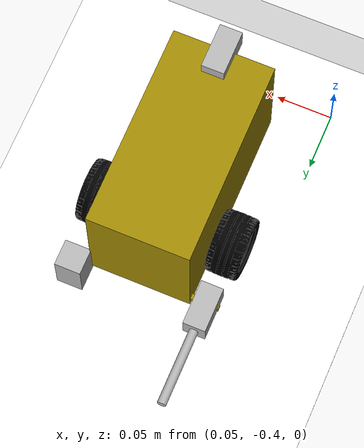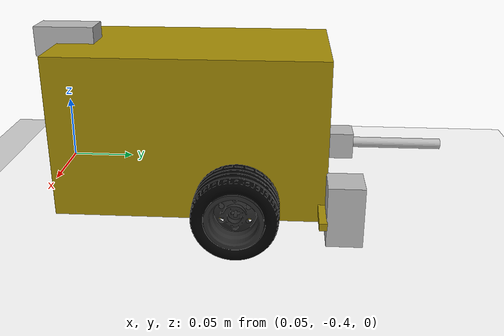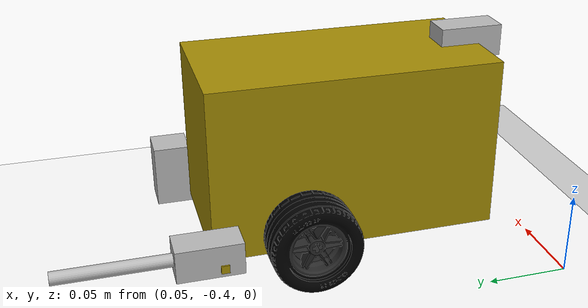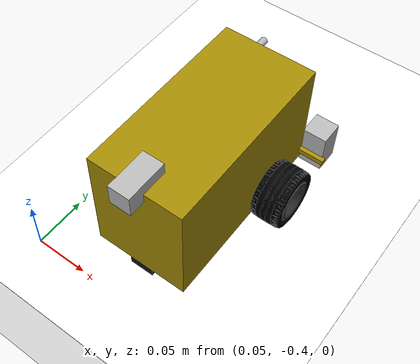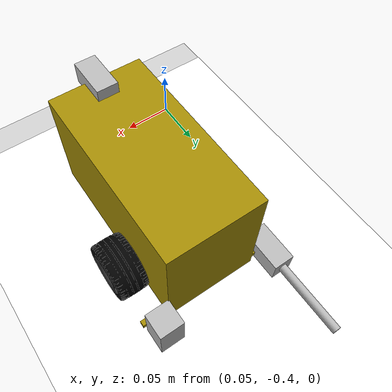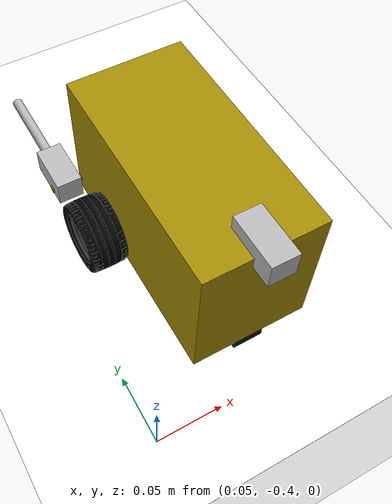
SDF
<?xml version="1.0" ?>
<sdf version="1.4">
  <world name="default">
    <scene>
      <ambient>0.5 0.5 0.5 1.0</ambient>
      <shadows>0</shadows>
    </scene>
    <include>
      <uri>model://ground_plane</uri>
    </include>
    <include>
      <uri>model://sun</uri>
    </include>
    <include>
      <uri>model://lego_mindstorm</uri>
      <name>lego_robot</name>
      <pose>0.14 -0.28 0 0 0 0</pose>
    </include>
    <include>
      <uri>model://racetrack</uri>
      <name>race_track</name>
      <pose>0 0 0 0 0 0</pose>
    </include>
  </world>
</sdf>

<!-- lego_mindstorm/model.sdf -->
<sdf version='1.4'>
  <model name="lego_robot">
    <static>false</static>
    <link name='chassis'>
      <pose>0 0 0 0 0 0</pose>
      <inertial>
        <mass>2</mass>
        <pose>0 0 0.05 0 0 0</pose>
        <inertia>
          <ixx>0.003</ixx>
          <iyy>0.003</iyy>
          <izz>0.002</izz>
        </inertia>
      </inertial>

      <collision name='collision'>
        <geometry>
	  <mesh>
            <uri>model://lego_mindstorm/meshes/body.dae</uri>
          </mesh>
        </geometry>
      </collision>

      <visual name='visual'>
        <geometry>
	  <mesh>
            <uri>model://lego_mindstorm/meshes/body.dae</uri>
          </mesh>
        </geometry>
      </visual>

      <collision name='caster_collision'>
    	<pose>0 -0.0777713 0 0 0 0</pose>
    	<geometry>
	  <mesh>
            <uri>model://lego_mindstorm/meshes/caster.dae</uri>
          </mesh>
    	</geometry>

    	<surface>
      	  <friction>
	    <ode>
	    <mu>0</mu>
	    <mu2>0</mu2>
	    <slip1>1.0</slip1>
	    <slip2>1.0</slip2>
	    </ode>
	  </friction>
    	</surface>
      </collision>

      <visual name='caster_visual'>
    	<pose>0 -0.0777713 0 0 0 0</pose>
    	<geometry>
	  <mesh>
            <uri>model://lego_mindstorm/meshes/caster.dae</uri>
          </mesh>
        </geometry>
      </visual>

      <collision name='camera_collision'>
    	<pose>0.0555 0.106 0.03 0 0 0</pose>
    	<geometry>
	  <box>
	    <size>0.023 0.023 .04</size>
	  </box>
    	</geometry>
      </collision>

      <visual name='camera_visual'>
    	<pose>0.0555 0.1005 0.03 0 0 0</pose>
    	<geometry>
	  <box>
	    <size>0.023 0.023 .04</size>
	  </box>
        </geometry>
      </visual>

      <sensor name="camera" type="camera">
	<pose>0.0555 0.1005 0.03 0 1.5707 1.5707</pose>
        <camera>
          <horizontal_fov>0.4</horizontal_fov>
          <image>
	    <width>48</width>
            <height>48</height>
          </image>
          <clip>
            <near>0.021</near>
            <far>0.031</far>
          </clip>
        </camera>
        <always_on>1</always_on>
        <update_rate>30</update_rate>
        <visualize>true</visualize>

	<plugin name="camera_controller" filename="libgazebo_ros_camera.so">
          <alwaysOn>true</alwaysOn>
          <updateRate>30.0</updateRate>
          <cameraName>camera1</cameraName>
          <imageTopicName>image_raw</imageTopicName>
          <cameraInfoTopicName>camera_info</cameraInfoTopicName>
          <frameName>camera_link</frameName>
          <hackBaseline>0.07</hackBaseline>
          <distortionK1>0.0</distortionK1>
          <distortionK2>0.0</distortionK2>
          <distortionK3>0.0</distortionK3>
          <distortionT1>0.0</distortionT1>
          <distortionT2>0.0</distortionT2>
        </plugin>

      </sensor>

      <collision name='sonar_collision'>
    	<pose>0 0.07 0.03 0 0 0</pose>
    	<geometry>
	  <box>
	    <size>0.055 0.02 .023</size>
	  </box>
    	</geometry>
      </collision>

      <visual name='sonar_visual'>
    	<pose>0 0.07 0.03 0 0 0</pose>
    	<geometry>
	  <box>
	    <size>0.055 0.02 .023</size>
	  </box>
        </geometry>
      </visual>

      <sensor name="sonar" type="ray">
	<pose>0 0.07 0.03 0 0 1.5707</pose>
	<ray>
	  <scan>
	    <horizontal>
	      <samples>100</samples>
              <resolution>1</resolution>
              <min_angle>-0.7854</min_angle>
	      <max_angle>0.7854</max_angle>
	    </horizontal>
	  </scan>
	  <range>
            <min>0.029</min>
            <max>2.55</max>
            <resolution>0.1</resolution>
          </range>
	</ray>
        <always_on>1</always_on>
        <update_rate>30</update_rate>
        <visualize>true</visualize>

	<plugin name="sonar_controller" filename="libgazebo_ros_sonar.so">
          <robotNamespace>lego_robot</robotNamespace>
	  <topicName>sonar</topicName>
        </plugin>

      </sensor>

    </link>

    <link name="gyro_sensor">
      <collision name='gyro_collision'>
    	<pose>0 -0.085 0.124 0 0 0</pose>
    	<geometry>
	  <box>
	    <size>0.02 0.04 .02</size>
	  </box>
    	</geometry>
      </collision>

      <visual name='gyro_visual'>
    	<pose>0 -0.085 0.124 0 0 0</pose>
    	<geometry>
	  <box>
	    <size>0.02 0.04 .02</size>
	  </box>
        </geometry>
      </visual>
    </link>

    <link name="touch_sensor">
        <pose>-0.059 0.095 0.03 0 0 0</pose>
        <inertial>
            <inertia>
                <ixx>0.01</ixx>
                <ixy>0</ixy>
                <ixz>0</ixz>
                <iyy>0.01</iyy>
                <iyz>0</iyz>
                <izz>0.01</izz>
            </inertia>
            <mass>0.05</mass>
        </inertial>
        <collision name='touch_collision'>
    	  <geometry>
	    <box>
	      <size>0.02 0.04 .02</size>
	    </box>
    	  </geometry>
        </collision>

      	<visual name='touch_visual'>
    	  <geometry>
	    <box>
	      <size>0.02 0.04 .02</size>
	    </box>
          </geometry>
        </visual>
    </link>

    <link name="palm">
        <pose>-0.059 0.143 0.03 0 1.5707 1.5707</pose>
        <inertial>
            <inertia>
                <ixx>0.01</ixx>
                <ixy>0</ixy>
                <ixz>0</ixz>
                <iyy>0.01</iyy>
                <iyz>0</iyz>
                <izz>0.01</izz>
            </inertia>
            <mass>0.05</mass>
        </inertial>
        <collision name="collision">
            <geometry>
                <cylinder>
                    <radius>.004</radius>
            	    <length>.08</length>
                </cylinder>
            </geometry>
        </collision>
        <visual name="visual">
            <geometry>
                <cylinder>
                    <radius>.004</radius>
            	    <length>.08</length>
                </cylinder>
            </geometry>
            <material>
                <script>Gazebo/Red</script>
            </material>
        </visual>
    </link>

    <link name="left_wheel">
      <pose>-0.059 0.032 0.028 0 1.5707 0</pose>
      <collision name="collision">
        <geometry>
	  <cylinder>
            <radius>.028</radius>
            <length>.029</length>
          </cylinder>
        </geometry>
	<surface>
      	  <friction>
	    <ode>
  	      <mu>0.6</mu>
	      <mu2>0.6</mu2>
	    </ode>
          </friction>
    	</surface>
      </collision>

	<inertial>
	 <mass>1</mass>
	 <inertia>
	 <ixx>0.00066</ixx>
	 <iyy>0.00066</iyy>
	 <izz>0.0005</izz>
	 </inertia>
	 </inertial>

      <visual name="visual">
	<pose>-0.028 0 0 0 1.5707 0</pose>
        <geometry>
          <mesh>
            <uri>model://lego_mindstorm/meshes/wheel.dae</uri>
          </mesh>
        </geometry>
      </visual>
    </link>

    <link name="right_wheel">
      <pose>0.059 0.032 0.028 0 1.5707 0</pose>
      <collision name="collision">
        <geometry>
	  <cylinder>
            <radius>.028</radius>
            <length>.029</length>
          </cylinder>
        </geometry>
	<surface>
      	  <friction>
	    <ode>
	      <mu>0.6</mu>
	      <mu2>0.6</mu2>
	    </ode>
          </friction>
    	</surface>
	</collision>

	<inertial>
	 <mass>1</mass>
	 <inertia>
	 <ixx>0.00066</ixx>
	 <iyy>0.00066</iyy>
	 <izz>0.0005</izz>
	 </inertia>
	 </inertial>

      <visual name="visual">
	<pose>-0.028 0 0 0 1.5707 0</pose>
        <geometry>
          <mesh>
            <uri>model://lego_mindstorm/meshes/wheel.dae</uri>

          </mesh>
        </geometry>
      </visual>
    </link>

    <joint type="revolute" name="left_wheel_hinge">
      <pose>0 0 -0.03 0 0 0</pose>
      <child>left_wheel</child>
      <parent>chassis</parent>
      <axis>
        <xyz>-1 0 0</xyz>
      </axis>
    </joint>

    <joint type="revolute" name="right_wheel_hinge">
      <pose>0 0 0.03 0 0 0</pose>
      <child>right_wheel</child>
      <parent>chassis</parent>
      <axis>
        <xyz>-1 0 0</xyz>
      </axis>
    </joint>

    <joint type="revolute" name="gyro_hinge">
      <pose>0 0 0 0 0 0</pose>
      <child>gyro_sensor</child>
      <parent>chassis</parent>
      <axis>
        <xyz>0 0 1</xyz>
	<limit>
          <upper>0</upper>
          <lower>0</lower>
    	</limit>
      </axis>
    </joint>

    <joint name="palm_riser" type="prismatic">
        <child>palm</child>
        <parent>touch_sensor</parent>
        <axis>
            <limit>
                <lower>0</lower>
                <upper>0.004</upper>
            </limit>
            <xyz>0 1 0</xyz>
        </axis>
    </joint>

    <joint type="revolute" name="touch_hinge">
      <pose>0 0 0 0 0 0</pose>
      <child>touch_sensor</child>
      <parent>chassis</parent>
      <axis>
        <xyz>0 0 1</xyz>
	<limit>
          <upper>0</upper>
          <lower>0</lower>
    	</limit>
      </axis>
    </joint>

    <plugin name="right_wheel_controller" filename="libwheel_plugin.so">
	<jointName>right_wheel_hinge</jointName>
      	<commandTopic>cmd_vel_right</commandTopic>
	<wheelDiameter>0.056</wheelDiameter>
      	<drive>true</drive>
    </plugin>
    <plugin name="left_wheel_controller" filename="libwheel_plugin.so">
	<jointName>left_wheel_hinge</jointName>
      	<commandTopic>cmd_vel_left</commandTopic>
	<wheelDiameter>0.056</wheelDiameter>
      	<drive>true</drive>
    </plugin>

    <plugin name="gyro_controller" filename="libgyro_plugin.so">

    </plugin>

    <plugin name="touch_controller" filename="libtouch_plugin.so">

    </plugin>
  </model>
</sdf>

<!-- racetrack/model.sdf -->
<sdf version='1.6'>
  <model name='race_track'>
    <static>true</static>
    <link name='link'>
      <visual name='visual'>
        <geometry>
          <box>
            <size>0.63 0.9 0.000553</size>
          </box>
        </geometry>
        <material>
          <script>
            <name>RaceTrack/track</name>
	    <uri>model://racetrack/materials/scripts</uri>
            <uri>model://racetrack/materials/textures</uri>
          </script>
          <ambient>1 1 1 1</ambient>
          <diffuse>1 1 1 1</diffuse>
          <specular>0.01 0.01 0.01 1</specular>
          <emissive>1 1 1 1</emissive>
        </material>
        <transparency>0</transparency>
      </visual>
      <collision name='collision'>
        <geometry>
          <box>
            <size>0.63 0.9 0.000553</size>
          </box>
        </geometry>
	<surface>
          <friction>
            <ode>
              <mu>100</mu>
              <mu2>50</mu2>
            </ode>
          </friction>
        </surface>
      </collision>
    </link>
  </model>
</sdf>
